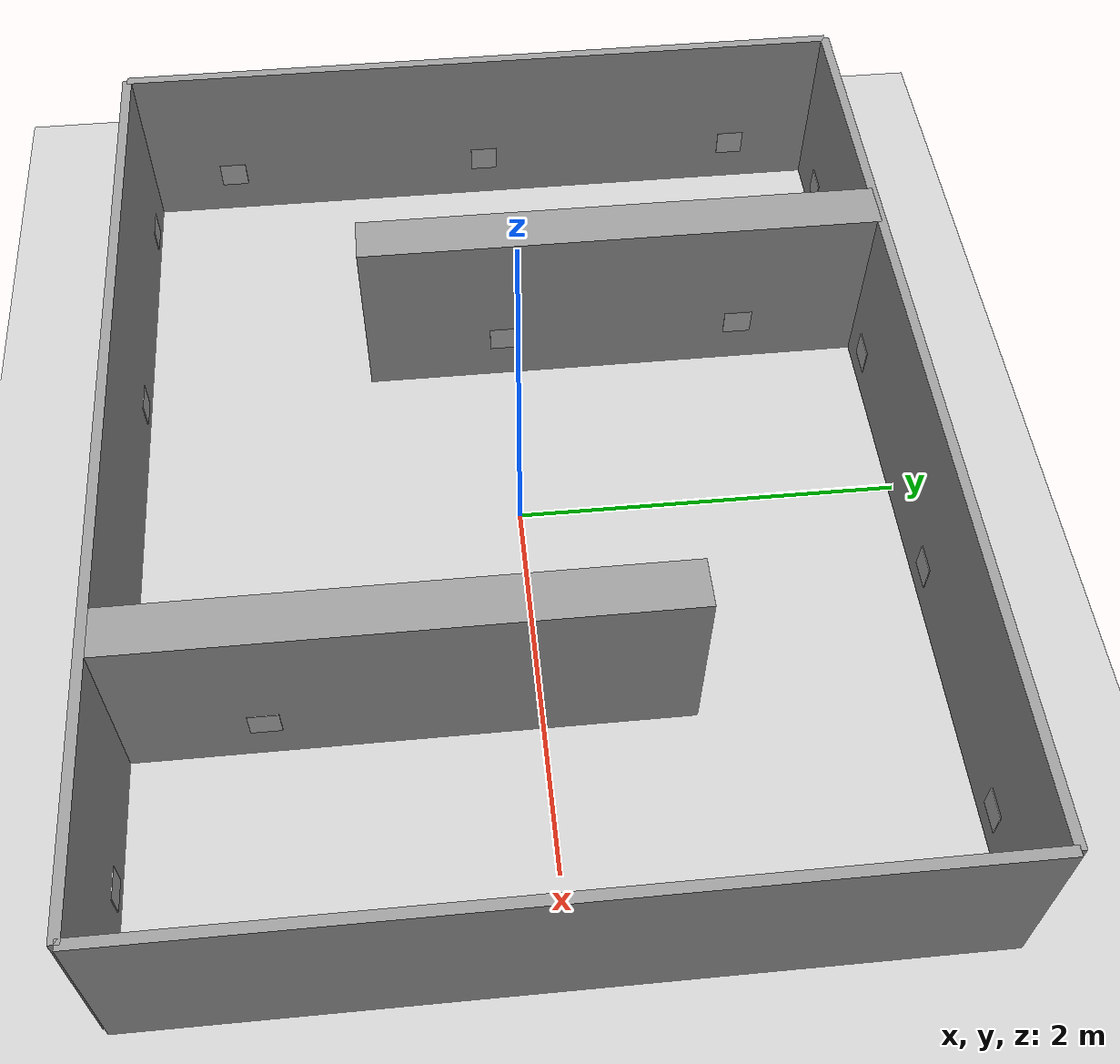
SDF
<?xml version="1.0" ?>
<sdf version="1.6">
  <world name="default">

    <!-- Iluminacion / suelo -->
    <include><uri>model://sun</uri></include>
    <include><uri>model://ground_plane</uri></include>

    <physics name="default_physics" default="0" type="ode">
      <gravity>0 0 -9.8</gravity>
      <max_step_size>0.001</max_step_size>
      <real_time_update_rate>1000</real_time_update_rate>
    </physics>

    <scene>
      <ambient>0.6 0.6 0.6 1</ambient>
      <background>0.7 0.7 0.8 1</background>
      <shadows>1</shadows>
    </scene>

    <!-- ====== Paredes externas ====== -->
    <model name="wall_north">
      <static>true</static>
      <pose>0 2.0 0.5 0 0 0</pose>
      <link name="link">
        <collision name="c"><geometry><box><size>5.0 0.05 1.0</size></box></geometry></collision>
        <visual    name="v"><geometry><box><size>5.0 0.05 1.0</size></box></geometry>
          <material><script><uri>file://media/materials/scripts/gazebo.material</uri><name>Gazebo/Grey</name></script></material>
        </visual>
      </link>
    </model>
    <model name="wall_south">
      <static>true</static>
      <pose>0 -2.0 0.5 0 0 0</pose>
      <link name="link">
        <collision name="c"><geometry><box><size>5.0 0.05 1.0</size></box></geometry></collision>
        <visual    name="v"><geometry><box><size>5.0 0.05 1.0</size></box></geometry>
          <material><script><uri>file://media/materials/scripts/gazebo.material</uri><name>Gazebo/Grey</name></script></material>
        </visual>
      </link>
    </model>
    <model name="wall_east">
      <static>true</static>
      <pose>2.5 0 0.5 0 0 0</pose>
      <link name="link">
        <collision name="c"><geometry><box><size>0.05 4.0 1.0</size></box></geometry></collision>
        <visual    name="v"><geometry><box><size>0.05 4.0 1.0</size></box></geometry>
          <material><script><uri>file://media/materials/scripts/gazebo.material</uri><name>Gazebo/Grey</name></script></material>
        </visual>
      </link>
    </model>
    <model name="wall_west">
      <static>true</static>
      <pose>-2.5 0 0.5 0 0 0</pose>
      <link name="link">
        <collision name="c"><geometry><box><size>0.05 4.0 1.0</size></box></geometry></collision>
        <visual    name="v"><geometry><box><size>0.05 4.0 1.0</size></box></geometry>
          <material><script><uri>file://media/materials/scripts/gazebo.material</uri><name>Gazebo/Grey</name></script></material>
        </visual>
      </link>
    </model>
    <!-- ====== Paredes internas ====== -->
    <model name="wall_inner_left">
      <static>true</static>
      <pose>-1.125 0.625 0.5 0 0 0</pose>
      <link name="link">
        <collision name="c"><geometry><box><size>0.25 2.75 1.0</size></box></geometry></collision>
        <visual    name="v"><geometry><box><size>0.25 2.75 1.0</size></box></geometry>
          <material><script><uri>file://media/materials/scripts/gazebo.material</uri><name>Gazebo/Grey</name></script></material>
        </visual>
      </link>
    </model>
    <model name="wall_inner_right">
      <static>true</static>
      <pose>1.125 -0.625 0.5 0 0 0</pose>
      <link name="link">
        <collision name="c"><geometry><box><size>0.25 2.75 1.0</size></box></geometry></collision>
        <visual    name="v"><geometry><box><size>0.25 2.75 1.0</size></box></geometry>
          <material><script><uri>file://media/materials/scripts/gazebo.material</uri><name>Gazebo/Grey</name></script></material>
        </visual>
      </link>
    </model>

    <!-- ====== Marcadores ArUco (inline) ====== -->
    <model name="aruco_marker_0">
      <static>true</static>
      <pose>-2.0000 1.9400 0.3000 1.570796 0.000000 0.000000</pose>
      <link name="link">
        <visual name="v">
          <cast_shadows>false</cast_shadows>
          <geometry><box><size>0.15 0.15 0.005</size></box></geometry>
          <material>
            <script>
              <uri>model://aruco_markers/materials/scripts</uri>
              <uri>model://aruco_markers/materials/textures</uri>
              <name>ArucoMarker/Id0</name>
            </script>
          </material>
        </visual>
        <!-- collision opcional; si choca con algo lo puedes comentar -->
        <collision name="c">
          <geometry><box><size>0.15 0.15 0.005</size></box></geometry>
          <surface><contact><collide_bitmask>0x00</collide_bitmask></contact></surface>
        </collision>
      </link>
    </model>
    <model name="aruco_marker_1">
      <static>true</static>
      <pose>-0.7000 1.9400 0.3000 1.570796 0.000000 0.000000</pose>
      <link name="link">
        <visual name="v">
          <cast_shadows>false</cast_shadows>
          <geometry><box><size>0.15 0.15 0.005</size></box></geometry>
          <material>
            <script>
              <uri>model://aruco_markers/materials/scripts</uri>
              <uri>model://aruco_markers/materials/textures</uri>
              <name>ArucoMarker/Id1</name>
            </script>
          </material>
        </visual>
        <!-- collision opcional; si choca con algo lo puedes comentar -->
        <collision name="c">
          <geometry><box><size>0.15 0.15 0.005</size></box></geometry>
          <surface><contact><collide_bitmask>0x00</collide_bitmask></contact></surface>
        </collision>
      </link>
    </model>
    <model name="aruco_marker_2">
      <static>true</static>
      <pose>0.7000 1.9400 0.3000 1.570796 0.000000 0.000000</pose>
      <link name="link">
        <visual name="v">
          <cast_shadows>false</cast_shadows>
          <geometry><box><size>0.15 0.15 0.005</size></box></geometry>
          <material>
            <script>
              <uri>model://aruco_markers/materials/scripts</uri>
              <uri>model://aruco_markers/materials/textures</uri>
              <name>ArucoMarker/Id2</name>
            </script>
          </material>
        </visual>
        <!-- collision opcional; si choca con algo lo puedes comentar -->
        <collision name="c">
          <geometry><box><size>0.15 0.15 0.005</size></box></geometry>
          <surface><contact><collide_bitmask>0x00</collide_bitmask></contact></surface>
        </collision>
      </link>
    </model>
    <model name="aruco_marker_3">
      <static>true</static>
      <pose>2.0000 1.9400 0.3000 1.570796 0.000000 0.000000</pose>
      <link name="link">
        <visual name="v">
          <cast_shadows>false</cast_shadows>
          <geometry><box><size>0.15 0.15 0.005</size></box></geometry>
          <material>
            <script>
              <uri>model://aruco_markers/materials/scripts</uri>
              <uri>model://aruco_markers/materials/textures</uri>
              <name>ArucoMarker/Id3</name>
            </script>
          </material>
        </visual>
        <!-- collision opcional; si choca con algo lo puedes comentar -->
        <collision name="c">
          <geometry><box><size>0.15 0.15 0.005</size></box></geometry>
          <surface><contact><collide_bitmask>0x00</collide_bitmask></contact></surface>
        </collision>
      </link>
    </model>
    <model name="aruco_marker_4">
      <static>true</static>
      <pose>-2.0000 -1.9400 0.3000 1.570796 0.000000 3.141593</pose>
      <link name="link">
        <visual name="v">
          <cast_shadows>false</cast_shadows>
          <geometry><box><size>0.15 0.15 0.005</size></box></geometry>
          <material>
            <script>
              <uri>model://aruco_markers/materials/scripts</uri>
              <uri>model://aruco_markers/materials/textures</uri>
              <name>ArucoMarker/Id4</name>
            </script>
          </material>
        </visual>
        <!-- collision opcional; si choca con algo lo puedes comentar -->
        <collision name="c">
          <geometry><box><size>0.15 0.15 0.005</size></box></geometry>
          <surface><contact><collide_bitmask>0x00</collide_bitmask></contact></surface>
        </collision>
      </link>
    </model>
    <model name="aruco_marker_5">
      <static>true</static>
      <pose>-0.7000 -1.9400 0.3000 1.570796 0.000000 3.141593</pose>
      <link name="link">
        <visual name="v">
          <cast_shadows>false</cast_shadows>
          <geometry><box><size>0.15 0.15 0.005</size></box></geometry>
          <material>
            <script>
              <uri>model://aruco_markers/materials/scripts</uri>
              <uri>model://aruco_markers/materials/textures</uri>
              <name>ArucoMarker/Id5</name>
            </script>
          </material>
        </visual>
        <!-- collision opcional; si choca con algo lo puedes comentar -->
        <collision name="c">
          <geometry><box><size>0.15 0.15 0.005</size></box></geometry>
          <surface><contact><collide_bitmask>0x00</collide_bitmask></contact></surface>
        </collision>
      </link>
    </model>
    <model name="aruco_marker_6">
      <static>true</static>
      <pose>0.7000 -1.9400 0.3000 1.570796 0.000000 3.141593</pose>
      <link name="link">
        <visual name="v">
          <cast_shadows>false</cast_shadows>
          <geometry><box><size>0.15 0.15 0.005</size></box></geometry>
          <material>
            <script>
              <uri>model://aruco_markers/materials/scripts</uri>
              <uri>model://aruco_markers/materials/textures</uri>
              <name>ArucoMarker/Id6</name>
            </script>
          </material>
        </visual>
        <!-- collision opcional; si choca con algo lo puedes comentar -->
        <collision name="c">
          <geometry><box><size>0.15 0.15 0.005</size></box></geometry>
          <surface><contact><collide_bitmask>0x00</collide_bitmask></contact></surface>
        </collision>
      </link>
    </model>
    <model name="aruco_marker_7">
      <static>true</static>
      <pose>2.0000 -1.9400 0.3000 1.570796 0.000000 3.141593</pose>
      <link name="link">
        <visual name="v">
          <cast_shadows>false</cast_shadows>
          <geometry><box><size>0.15 0.15 0.005</size></box></geometry>
          <material>
            <script>
              <uri>model://aruco_markers/materials/scripts</uri>
              <uri>model://aruco_markers/materials/textures</uri>
              <name>ArucoMarker/Id7</name>
            </script>
          </material>
        </visual>
        <!-- collision opcional; si choca con algo lo puedes comentar -->
        <collision name="c">
          <geometry><box><size>0.15 0.15 0.005</size></box></geometry>
          <surface><contact><collide_bitmask>0x00</collide_bitmask></contact></surface>
        </collision>
      </link>
    </model>
    <model name="aruco_marker_8">
      <static>true</static>
      <pose>-2.4400 -1.5000 0.3000 1.570796 0.000000 1.570796</pose>
      <link name="link">
        <visual name="v">
          <cast_shadows>false</cast_shadows>
          <geometry><box><size>0.15 0.15 0.005</size></box></geometry>
          <material>
            <script>
              <uri>model://aruco_markers/materials/scripts</uri>
              <uri>model://aruco_markers/materials/textures</uri>
              <name>ArucoMarker/Id8</name>
            </script>
          </material>
        </visual>
        <!-- collision opcional; si choca con algo lo puedes comentar -->
        <collision name="c">
          <geometry><box><size>0.15 0.15 0.005</size></box></geometry>
          <surface><contact><collide_bitmask>0x00</collide_bitmask></contact></surface>
        </collision>
      </link>
    </model>
    <model name="aruco_marker_9">
      <static>true</static>
      <pose>-2.4400 0.0000 0.3000 1.570796 0.000000 1.570796</pose>
      <link name="link">
        <visual name="v">
          <cast_shadows>false</cast_shadows>
          <geometry><box><size>0.15 0.15 0.005</size></box></geometry>
          <material>
            <script>
              <uri>model://aruco_markers/materials/scripts</uri>
              <uri>model://aruco_markers/materials/textures</uri>
              <name>ArucoMarker/Id9</name>
            </script>
          </material>
        </visual>
        <!-- collision opcional; si choca con algo lo puedes comentar -->
        <collision name="c">
          <geometry><box><size>0.15 0.15 0.005</size></box></geometry>
          <surface><contact><collide_bitmask>0x00</collide_bitmask></contact></surface>
        </collision>
      </link>
    </model>
    <model name="aruco_marker_10">
      <static>true</static>
      <pose>-2.4400 1.5000 0.3000 1.570796 0.000000 1.570796</pose>
      <link name="link">
        <visual name="v">
          <cast_shadows>false</cast_shadows>
          <geometry><box><size>0.15 0.15 0.005</size></box></geometry>
          <material>
            <script>
              <uri>model://aruco_markers/materials/scripts</uri>
              <uri>model://aruco_markers/materials/textures</uri>
              <name>ArucoMarker/Id10</name>
            </script>
          </material>
        </visual>
        <!-- collision opcional; si choca con algo lo puedes comentar -->
        <collision name="c">
          <geometry><box><size>0.15 0.15 0.005</size></box></geometry>
          <surface><contact><collide_bitmask>0x00</collide_bitmask></contact></surface>
        </collision>
      </link>
    </model>
    <model name="aruco_marker_11">
      <static>true</static>
      <pose>2.4400 -1.5000 0.3000 1.570796 0.000000 -1.570796</pose>
      <link name="link">
        <visual name="v">
          <cast_shadows>false</cast_shadows>
          <geometry><box><size>0.15 0.15 0.005</size></box></geometry>
          <material>
            <script>
              <uri>model://aruco_markers/materials/scripts</uri>
              <uri>model://aruco_markers/materials/textures</uri>
              <name>ArucoMarker/Id11</name>
            </script>
          </material>
        </visual>
        <!-- collision opcional; si choca con algo lo puedes comentar -->
        <collision name="c">
          <geometry><box><size>0.15 0.15 0.005</size></box></geometry>
          <surface><contact><collide_bitmask>0x00</collide_bitmask></contact></surface>
        </collision>
      </link>
    </model>
    <model name="aruco_marker_12">
      <static>true</static>
      <pose>2.4400 0.0000 0.3000 1.570796 0.000000 -1.570796</pose>
      <link name="link">
        <visual name="v">
          <cast_shadows>false</cast_shadows>
          <geometry><box><size>0.15 0.15 0.005</size></box></geometry>
          <material>
            <script>
              <uri>model://aruco_markers/materials/scripts</uri>
              <uri>model://aruco_markers/materials/textures</uri>
              <name>ArucoMarker/Id12</name>
            </script>
          </material>
        </visual>
        <!-- collision opcional; si choca con algo lo puedes comentar -->
        <collision name="c">
          <geometry><box><size>0.15 0.15 0.005</size></box></geometry>
          <surface><contact><collide_bitmask>0x00</collide_bitmask></contact></surface>
        </collision>
      </link>
    </model>
    <model name="aruco_marker_13">
      <static>true</static>
      <pose>2.4400 1.5000 0.3000 1.570796 0.000000 -1.570796</pose>
      <link name="link">
        <visual name="v">
          <cast_shadows>false</cast_shadows>
          <geometry><box><size>0.15 0.15 0.005</size></box></geometry>
          <material>
            <script>
              <uri>model://aruco_markers/materials/scripts</uri>
              <uri>model://aruco_markers/materials/textures</uri>
              <name>ArucoMarker/Id13</name>
            </script>
          </material>
        </visual>
        <!-- collision opcional; si choca con algo lo puedes comentar -->
        <collision name="c">
          <geometry><box><size>0.15 0.15 0.005</size></box></geometry>
          <surface><contact><collide_bitmask>0x00</collide_bitmask></contact></surface>
        </collision>
      </link>
    </model>
    <model name="aruco_marker_14">
      <static>true</static>
      <pose>-0.9900 1.3000 0.3000 1.570796 0.000000 1.570796</pose>
      <link name="link">
        <visual name="v">
          <cast_shadows>false</cast_shadows>
          <geometry><box><size>0.15 0.15 0.005</size></box></geometry>
          <material>
            <script>
              <uri>model://aruco_markers/materials/scripts</uri>
              <uri>model://aruco_markers/materials/textures</uri>
              <name>ArucoMarker/Id14</name>
            </script>
          </material>
        </visual>
        <!-- collision opcional; si choca con algo lo puedes comentar -->
        <collision name="c">
          <geometry><box><size>0.15 0.15 0.005</size></box></geometry>
          <surface><contact><collide_bitmask>0x00</collide_bitmask></contact></surface>
        </collision>
      </link>
    </model>
    <model name="aruco_marker_15">
      <static>true</static>
      <pose>-0.9900 0.0000 0.3000 1.570796 0.000000 1.570796</pose>
      <link name="link">
        <visual name="v">
          <cast_shadows>false</cast_shadows>
          <geometry><box><size>0.15 0.15 0.005</size></box></geometry>
          <material>
            <script>
              <uri>model://aruco_markers/materials/scripts</uri>
              <uri>model://aruco_markers/materials/textures</uri>
              <name>ArucoMarker/Id15</name>
            </script>
          </material>
        </visual>
        <!-- collision opcional; si choca con algo lo puedes comentar -->
        <collision name="c">
          <geometry><box><size>0.15 0.15 0.005</size></box></geometry>
          <surface><contact><collide_bitmask>0x00</collide_bitmask></contact></surface>
        </collision>
      </link>
    </model>
    <model name="aruco_marker_16">
      <static>true</static>
      <pose>-1.2600 1.3000 0.3000 1.570796 0.000000 -1.570796</pose>
      <link name="link">
        <visual name="v">
          <cast_shadows>false</cast_shadows>
          <geometry><box><size>0.15 0.15 0.005</size></box></geometry>
          <material>
            <script>
              <uri>model://aruco_markers/materials/scripts</uri>
              <uri>model://aruco_markers/materials/textures</uri>
              <name>ArucoMarker/Id16</name>
            </script>
          </material>
        </visual>
        <!-- collision opcional; si choca con algo lo puedes comentar -->
        <collision name="c">
          <geometry><box><size>0.15 0.15 0.005</size></box></geometry>
          <surface><contact><collide_bitmask>0x00</collide_bitmask></contact></surface>
        </collision>
      </link>
    </model>
    <model name="aruco_marker_17">
      <static>true</static>
      <pose>0.9900 -1.3000 0.3000 1.570796 0.000000 -1.570796</pose>
      <link name="link">
        <visual name="v">
          <cast_shadows>false</cast_shadows>
          <geometry><box><size>0.15 0.15 0.005</size></box></geometry>
          <material>
            <script>
              <uri>model://aruco_markers/materials/scripts</uri>
              <uri>model://aruco_markers/materials/textures</uri>
              <name>ArucoMarker/Id17</name>
            </script>
          </material>
        </visual>
        <!-- collision opcional; si choca con algo lo puedes comentar -->
        <collision name="c">
          <geometry><box><size>0.15 0.15 0.005</size></box></geometry>
          <surface><contact><collide_bitmask>0x00</collide_bitmask></contact></surface>
        </collision>
      </link>
    </model>
    <model name="aruco_marker_18">
      <static>true</static>
      <pose>0.9900 0.0000 0.3000 1.570796 0.000000 -1.570796</pose>
      <link name="link">
        <visual name="v">
          <cast_shadows>false</cast_shadows>
          <geometry><box><size>0.15 0.15 0.005</size></box></geometry>
          <material>
            <script>
              <uri>model://aruco_markers/materials/scripts</uri>
              <uri>model://aruco_markers/materials/textures</uri>
              <name>ArucoMarker/Id18</name>
            </script>
          </material>
        </visual>
        <!-- collision opcional; si choca con algo lo puedes comentar -->
        <collision name="c">
          <geometry><box><size>0.15 0.15 0.005</size></box></geometry>
          <surface><contact><collide_bitmask>0x00</collide_bitmask></contact></surface>
        </collision>
      </link>
    </model>
    <model name="aruco_marker_19">
      <static>true</static>
      <pose>1.2600 -1.3000 0.3000 1.570796 0.000000 1.570796</pose>
      <link name="link">
        <visual name="v">
          <cast_shadows>false</cast_shadows>
          <geometry><box><size>0.15 0.15 0.005</size></box></geometry>
          <material>
            <script>
              <uri>model://aruco_markers/materials/scripts</uri>
              <uri>model://aruco_markers/materials/textures</uri>
              <name>ArucoMarker/Id19</name>
            </script>
          </material>
        </visual>
        <!-- collision opcional; si choca con algo lo puedes comentar -->
        <collision name="c">
          <geometry><box><size>0.15 0.15 0.005</size></box></geometry>
          <surface><contact><collide_bitmask>0x00</collide_bitmask></contact></surface>
        </collision>
      </link>
    </model>

  </world>
</sdf>
